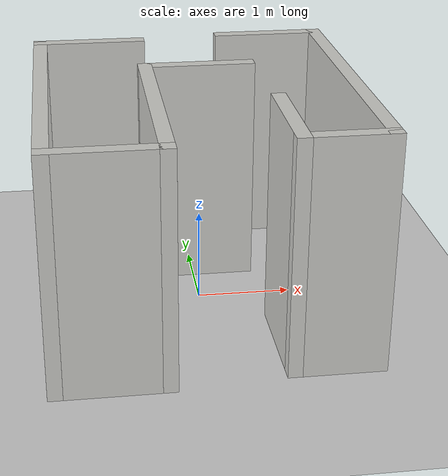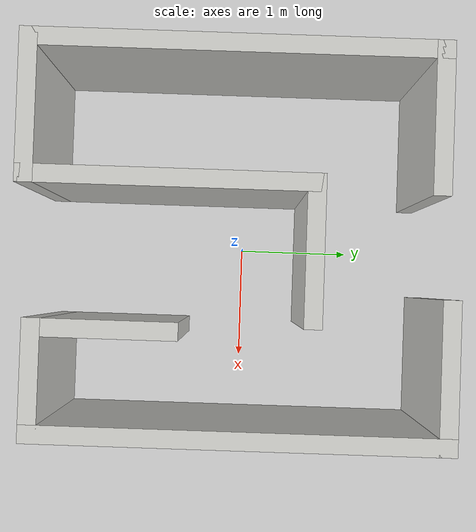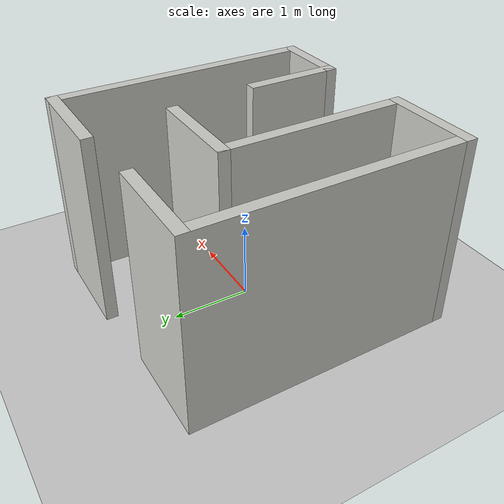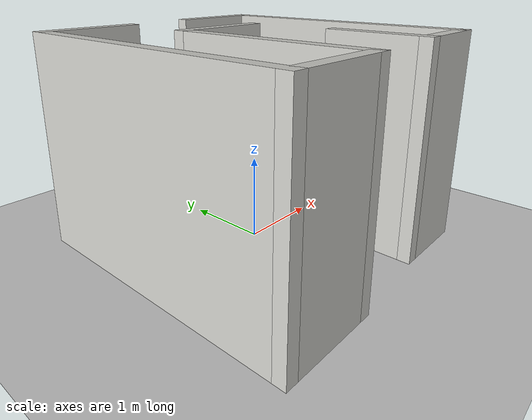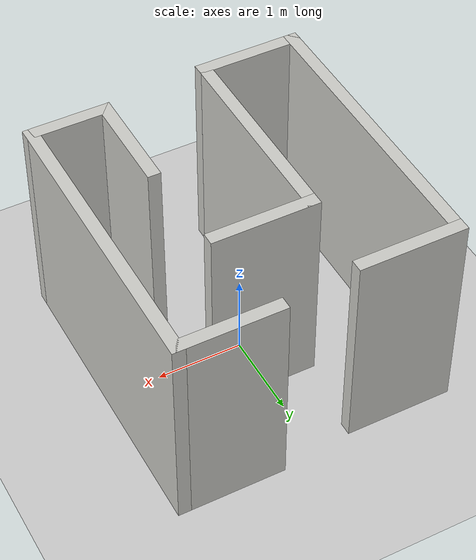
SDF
<sdf version="1.7">
 <world name="default">
  <light name="sun" type="directional">
   <pose>0 0 10 0 -0 0</pose>
   <diffuse>0.8 0.8 0.8 1</diffuse>
   <specular>0.2 0.2 0.2 1</specular>
   <attenuation>
    <range>1000</range>
    <constant>0.9</constant>
    <linear>0.01</linear>
    <quadratic>0.001</quadratic>
   </attenuation>
   <direction>-0.5 0.1 -0.9</direction>
   <spot><inner_angle>0</inner_angle><outer_angle>0</outer_angle><falloff>0</falloff></spot>
  </light>
  <model name="ground_plane">
   <static>1</static>
   <link name="link">
    <collision name="collision">
     <geometry><plane><normal>0 0 1</normal><size>100 100</size></plane></geometry>
     <surface><friction><ode><mu>100</mu><mu2>50</mu2></ode></friction></surface>
    </collision>
    <visual name="visual">
     <cast_shadows>0</cast_shadows>
     <geometry><plane><normal>0 0 1</normal><size>100 100</size></plane></geometry>
     <material>
      <script><uri>file://media/materials/scripts/gazebo.material</uri><name>Gazebo/Grey</name></script>
     </material>
    </visual>
   </link>
  </model>
  <gravity>0 0 -9.8</gravity>
  <magnetic_field>6e-06 2.3e-05 -4.2e-05</magnetic_field>
  <atmosphere type="adiabatic"/>
  <physics type="ode">
   <max_step_size>0.001</max_step_size>
   <real_time_factor>1</real_time_factor>
   <real_time_update_rate>1000</real_time_update_rate>
  </physics>
  <scene><ambient>0.4 0.4 0.4 1</ambient><background>0.7 0.7 0.7 1</background><shadows>1</shadows></scene>
  <audio><device>default</device></audio>
  <spherical_coordinates>
   <surface_model>EARTH_WGS84</surface_model>
   <latitude_deg>0</latitude_deg>
   <longitude_deg>0</longitude_deg>
   <elevation>0</elevation>
   <heading_deg>0</heading_deg>
  </spherical_coordinates>
  <model name="basic_map.world">
   <pose>-0.018795 -0.044974 0 0 -0 0</pose>
   <link name="Wall_10">
    <collision name="Wall_10_Collision">
     <geometry><box><size>3.5 0.15 2.5</size></box></geometry>
     <pose>0 0 1.25 0 -0 0</pose>
    </collision>
    <visual name="Wall_10_Visual">
     <pose>0 0 1.25 0 -0 0</pose>
     <geometry><box><size>3.5 0.15 2.5</size></box></geometry>
     <material>
      <script><uri>file://media/materials/scripts/gazebo.material</uri><name>Gazebo/CeilingTiled</name></script>
      <ambient>1 1 1 1</ambient>
     </material>
     <meta><layer>0</layer></meta>
    </visual>
    <pose>-1.58913 -0.052174 0 0 -0 1.5708</pose>
   </link>
   <link name="Wall_11">
    <collision name="Wall_11_Collision">
     <geometry><box><size>1.25 0.15 2.5</size></box></geometry>
     <pose>0 0 1.25 0 -0 0</pose>
    </collision>
    <visual name="Wall_11_Visual">
     <pose>0 0 1.25 0 -0 0</pose>
     <geometry><box><size>1.25 0.15 2.5</size></box></geometry>
     <material>
      <script><uri>file://media/materials/scripts/gazebo.material</uri><name>Gazebo/CeilingTiled</name></script>
      <ambient>1 1 1 1</ambient>
     </material>
     <meta><layer>0</layer></meta>
    </visual>
    <pose>-1.03913 1.62283 0 0 -0 0</pose>
   </link>
   <link name="Wall_13">
    <collision name="Wall_13_Collision">
     <geometry><box><size>1.25 0.15 2.5</size></box></geometry>
     <pose>0 0 1.25 0 -0 0</pose>
    </collision>
    <visual name="Wall_13_Visual">
     <pose>0 0 1.25 0 -0 0</pose>
     <geometry><box><size>1.25 0.15 2.5</size></box></geometry>
     <material>
      <script><uri>file://media/materials/scripts/gazebo.material</uri><name>Gazebo/CeilingTiled</name></script>
      <ambient>1 1 1 1</ambient>
     </material>
     <meta><layer>0</layer></meta>
    </visual>
    <pose>1.03913 1.72717 0 0 -0 0</pose>
   </link>
   <link name="Wall_14">
    <collision name="Wall_14_Collision">
     <geometry><box><size>3.5 0.15 2.5</size></box></geometry>
     <pose>0 0 1.25 0 -0 0</pose>
    </collision>
    <visual name="Wall_14_Visual">
     <pose>0 0 1.25 0 -0 0</pose>
     <geometry><box><size>3.5 0.15 2.5</size></box></geometry>
     <material>
      <script><uri>file://media/materials/scripts/gazebo.material</uri><name>Gazebo/CeilingTiled</name></script>
      <ambient>1 1 1 1</ambient>
     </material>
     <meta><layer>0</layer></meta>
    </visual>
    <pose>1.58913 0.052174 0 0 -0 -1.5708</pose>
   </link>
   <link name="Wall_15">
    <collision name="Wall_15_Collision">
     <geometry><box><size>1 0.15 2.5</size></box></geometry>
     <pose>0 0 1.25 0 -0 0</pose>
    </collision>
    <visual name="Wall_15_Visual">
     <pose>0 0 1.25 0 -0 0</pose>
     <geometry><box><size>1 0.15 2.5</size></box></geometry>
     <material>
      <script><uri>file://media/materials/scripts/gazebo.material</uri><name>Gazebo/CeilingTiled</name></script>
      <ambient>1 1 1 1</ambient>
     </material>
     <meta><layer>0</layer></meta>
    </visual>
    <pose>1.16413 -1.62283 0 0 -0 3.14159</pose>
   </link>
   <link name="Wall_16">
    <collision name="Wall_16_Collision">
     <geometry><box><size>1.25 0.15 2.5</size></box></geometry>
     <pose>0 0 1.25 0 -0 0</pose>
    </collision>
    <visual name="Wall_16_Visual">
     <pose>0 0 1.25 0 -0 0</pose>
     <geometry><box><size>1.25 0.15 2.5</size></box></geometry>
     <material>
      <script><uri>file://media/materials/scripts/gazebo.material</uri><name>Gazebo/CeilingTiled</name></script>
      <ambient>1 1 1 1</ambient>
     </material>
     <meta><layer>0</layer></meta>
    </visual>
    <pose>0.73913 -1.07283 0 0 -0 1.5708</pose>
   </link>
   <link name="Wall_7">
    <collision name="Wall_7_Collision">
     <geometry><box><size>1.25 0.15 2.5</size></box></geometry>
     <pose>0 0 1.25 0 -0 0</pose>
    </collision>
    <visual name="Wall_7_Visual">
     <pose>0 0 1.25 0 -0 0</pose>
     <geometry><box><size>1.25 0.15 2.5</size></box></geometry>
     <material>
      <script><uri>file://media/materials/scripts/gazebo.material</uri><name>Gazebo/CeilingTiled</name></script>
      <ambient>1 1 1 1</ambient>
     </material>
     <meta><layer>0</layer></meta>
    </visual>
    <pose>0.06087 0.622826 0 0 -0 3.14159</pose>
   </link>
   <link name="Wall_8">
    <collision name="Wall_8_Collision">
     <geometry><box><size>2.5 0.15 2.5</size></box></geometry>
     <pose>0 0 1.25 0 -0 0</pose>
    </collision>
    <visual name="Wall_8_Visual">
     <pose>0 0 1.25 0 -0 0</pose>
     <geometry><box><size>2.5 0.15 2.5</size></box></geometry>
     <material>
      <script><uri>file://media/materials/scripts/gazebo.material</uri><name>Gazebo/CeilingTiled</name></script>
      <ambient>1 1 1 1</ambient>
     </material>
     <meta><layer>0</layer></meta>
    </visual>
    <pose>-0.48913 -0.552174 0 0 -0 -1.5708</pose>
   </link>
   <link name="Wall_9">
    <collision name="Wall_9_Collision">
     <geometry><box><size>1.25 0.15 2.5</size></box></geometry>
     <pose>0 0 1.25 0 -0 0</pose>
    </collision>
    <visual name="Wall_9_Visual">
     <pose>0 0 1.25 0 -0 0</pose>
     <geometry><box><size>1.25 0.15 2.5</size></box></geometry>
     <material>
      <script><uri>file://media/materials/scripts/gazebo.material</uri><name>Gazebo/CeilingTiled</name></script>
      <ambient>1 1 1 1</ambient>
     </material>
     <meta><layer>0</layer></meta>
    </visual>
    <pose>-1.03913 -1.72717 0 0 -0 3.14159</pose>
   </link>
   <static>1</static>
  </model>
 </world>
</sdf>
